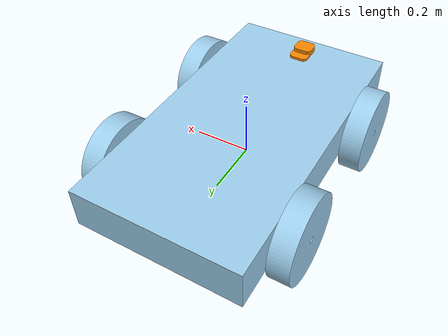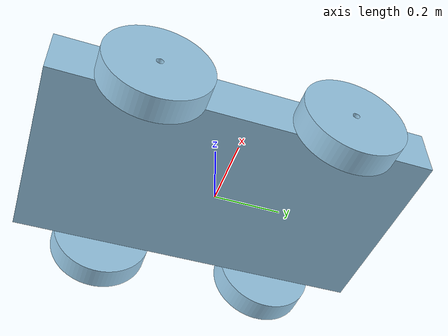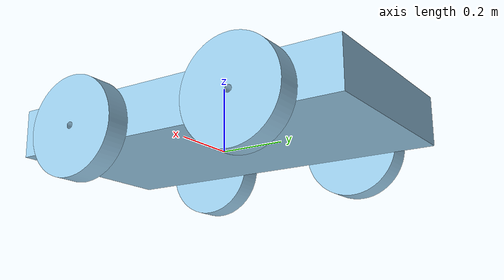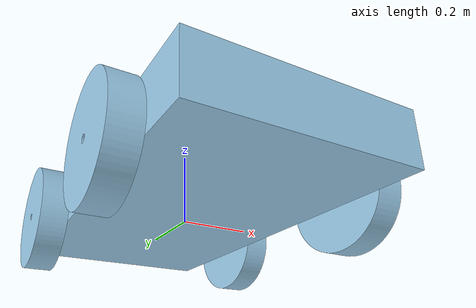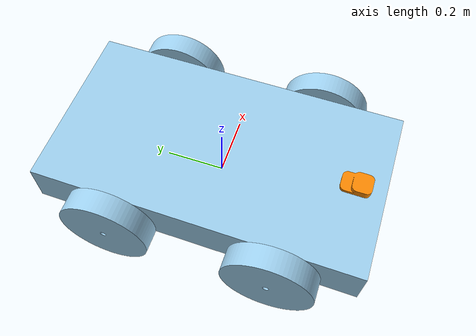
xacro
<?xml version='1.0'?>

<robot name="rover" xmlns:xacro="http://ros.org/wiki/xacro">
    <xacro:include filename="$(find my_simulations)/urdf/common_properties.xacro"/>
    <xacro:include filename="$(find my_simulations)/urdf/rover.gazebo.xacro"/>
    <link name="wheel_1">
        <visual>
            <origin xyz="-0.302073 -0.274046 0.0375" rpy="-1.5708 -1.5708 0" />
            <geometry>
                <!-- $(find my_simulations)/urdf/ -->
                <mesh filename="package://wheel_1.stl" />
            </geometry>
            <material name="wheel_1_material">
                <color rgba="0.615686 0.811765 0.929412 1.0" />
            </material>
        </visual>
        <collision>
            <origin xyz="-0.302073 -0.274046 0.0375" rpy="-1.5708 -1.5708 0" />
            <geometry>
                <mesh filename="package://wheel_1.stl" />
            </geometry>
            <material name="wheel_1_material">
                <color rgba="0.615686 0.811765 0.929412 1.0" />
            </material>
        </collision>
        <inertial>
            <origin xyz="0 0 0" rpy="0 0 0" />
            <mass value="0.00629423" />
            <inertia ixx="3.792" ixy="0" ixz="0" iyy="3.792" iyz="0" izz="7.071" />
        </inertial>
    </link>

    <link name="base">
        <visual>
            <origin xyz="0.274046 0.0375 -0.327073" rpy="1.5708 1.5708 0" />
            <geometry>
                <mesh filename="package://base.stl" />
            </geometry>
            <material name="base_material">
                <color rgba="0.615686 0.811765 0.929412 1.0" />
            </material>
        </visual>
        <collision>
            <origin xyz="0.274046 0.0375 -0.327073" rpy="1.5708 1.5708 0" />
            <geometry>
                <mesh filename="package://base.stl" />
            </geometry>
            <material name="base_material">
                <color rgba="0.615686 0.811765 0.929412 1.0" />
            </material>
        </collision>
        <inertial>
            <origin xyz="0 0 0" rpy="0 0 0" />
            <mass value="0.154507" />
            <inertia ixx="0.005" ixy="0" ixz="0" iyy="0.01" iyz="0" izz="0.01" />
        </inertial>
    </link>

    <link name="wheel_1_2">
        <visual>
            <origin xyz="0 0 0.076" rpy="1.5708 -0 0" />
            <geometry>
                <mesh filename="package://wheel_1.stl" />
            </geometry>
            <material name="wheel_1_material">
                <color rgba="0.615686 0.811765 0.929412 1.0" />
            </material>
        </visual>
        <collision>
            <origin xyz="0 0 0.076" rpy="1.5708 -0 0" />
            <geometry>
                <mesh filename="package://wheel_1.stl" />
            </geometry>
            <material name="wheel_1_material">
                <color rgba="0.615686 0.811765 0.929412 1.0" />
            </material>
        </collision>
        <inertial>
            <origin xyz="0 0 0" rpy="0 0 0" />
            <mass value="0.00629423" />
            <inertia ixx="3.792" ixy="0" ixz="0" iyy="3.792" iyz="0" izz="7.071" />
        </inertial>
    </link>

    <joint name="wheel1" type="revolute">
        <origin xyz="0 0 -0.63" rpy="3.14159 -0 0" />
        <parent link="base" />
        <child link="wheel_1_2" />
        <axis xyz="0 0 1" />
        <limit effort="1" velocity="20" lower="0" upper="6.28319" />
        <joint_properties friction="0.0" />
    </joint>

    <link name="wheel_1_3">
        <visual>
            <origin xyz="0 0 0" rpy="1.5708 -0 0" />
            <geometry>
                <mesh filename="package://wheel_1.stl" />
            </geometry>
            <material name="wheel_1_material">
                <color rgba="0.615686 0.811765 0.929412 1.0" />
            </material>
        </visual>
        <collision>
            <origin xyz="0 0 0" rpy="1.5708 -0 0" />
            <geometry>
                <mesh filename="package://wheel_1.stl" />
            </geometry>
            <material name="wheel_1_material">
                <color rgba="0.615686 0.811765 0.929412 1.0" />
            </material>
        </collision>
        <inertial>
            <origin xyz="0 0 0" rpy="0 0 0" />
            <mass value="0.00629423" />
            <inertia ixx="3.792" ixy="0" ixz="0" iyy="3.792" iyz="0" izz="7.071" />
        </inertial>
    </link>

    <joint name="wheel2" type="revolute">
        <origin xyz="0.548092 -1.38778e-17 -0.63" rpy="0 -0 3.14159" />
        <parent link="base" />
        <child link="wheel_1_3" />
        <axis xyz="0 0 1" />
        <limit effort="1" velocity="20" lower="0" upper="6.28319" />
        <joint_properties friction="0.0" />
    </joint>

    <link name="wheel_1_4">
        <visual>
            <origin xyz="0 0 0" rpy="1.5708 -0 0" />
            <geometry>
                <mesh filename="package://wheel_1.stl" />
            </geometry>
            <material name="wheel_1_material">
                <color rgba="0.615686 0.811765 0.929412 1.0" />
            </material>
        </visual>
        <collision>
            <origin xyz="0 0 0" rpy="1.5708 -0 0" />
            <geometry>
                <mesh filename="package://wheel_1.stl" />
            </geometry>
            <material name="wheel_1_material">
                <color rgba="0.615686 0.811765 0.929412 1.0" />
            </material>
        </collision>
        <inertial>
            <origin xyz="0 0 0" rpy="0 0 0" />
            <mass value="0.00629423" />
            <inertia ixx="3.792" ixy="0" ixz="0" iyy="3.792" iyz="0" izz="7.071" />
        </inertial>
    </link>

    <joint name="wheel3" type="revolute">
        <origin xyz="0.548092 0 -0.025" rpy="3.14159 -0 -1.5708" />
        <parent link="base" />
        <child link="wheel_1_4" />
        <axis xyz="0 0 1" />
        <limit effort="1" velocity="20" lower="0" upper="6.28319" />
        <joint_properties friction="0.0" />
    </joint>

    <link name="lidar_base">
        <visual>
            <origin xyz="-0.0147234 -0.00283662 -0.01" rpy="3.14159 -0 0" />
            <geometry>
                <mesh filename="package://lidar_base.stl" />
            </geometry>
            <material name="lidar_base_material">
                <color rgba="0.972549 0.529412 0.00392157 1.0" />
            </material>
        </visual>
        <collision>
            <origin xyz="-0.0147234 -0.00283662 -0.01" rpy="3.14159 -0 0" />
            <geometry>
                <mesh filename="package://lidar_base.stl" />
            </geometry>
            <material name="lidar_base_material">
                <color rgba="0.972549 0.529412 0.00392157 1.0" />
            </material>
        </collision>
        <inertial>
            <origin xyz="0 0 0" rpy="0 0 0" />
            <mass value="0.125" />
            <inertia ixx="0.001" ixy="0" ixz="0" iyy="0.001" iyz="0" izz="0.001" />
        </inertial>
    </link>

    <joint name="lidar" type="fixed">
        <origin xyz="-0.175954 -0.1125 -0.327073" rpy="-1.5708 -0 0" />
        <parent link="base" />
        <child link="lidar_base" />
        <axis xyz="0 0 1" />
        <limit effort="1" velocity="20" />
        <joint_properties friction="0.0" />
    </joint>

    <joint name="wheel4" type="revolute">
        <origin xyz="-0.327073 -0.274046 0.0375" rpy="-1.5708 -0 1.5708" />
        <parent link="wheel_1" />
        <child link="base" />
        <axis xyz="0 0 1" />
        <limit effort="1" velocity="20" lower="0" upper="6.28319" />
        <joint_properties friction="0.0" />
    </joint>

</robot>
